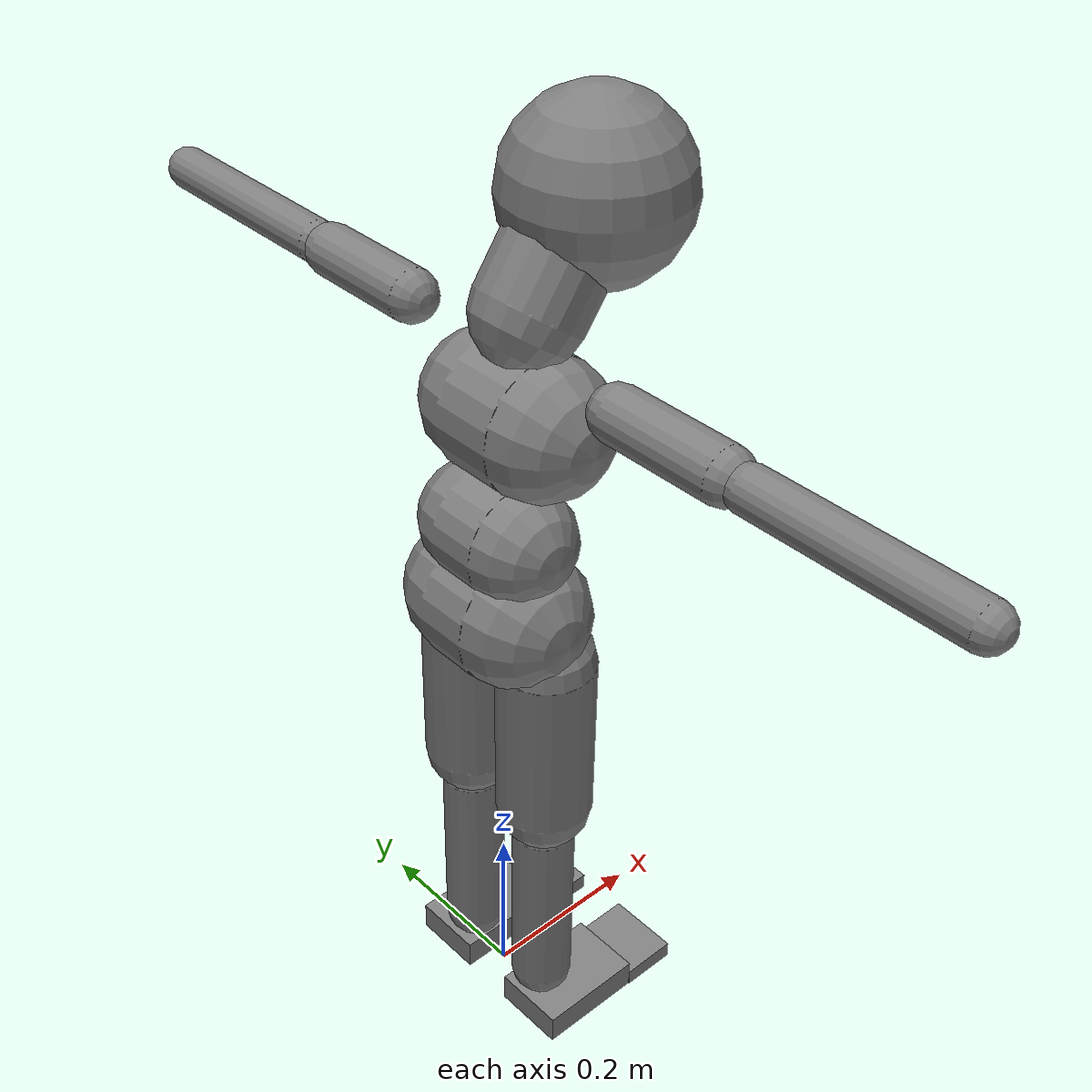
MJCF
<!-- GENERATED by training/tools/build_mjcf.py from SourceArt/Zombie/zombie.glb. Do not edit. -->
<mujoco model="zombie">
  <compiler angle="degree" autolimits="true" />
  <option timestep="0.005" gravity="0 0 -9.81" integrator="implicitfast" solver="Newton" iterations="20" cone="pyramidal" jacobian="auto">
    <flag multiccd="disable" />
  </option>
  <worldbody>
    <body name="pelvis" pos="0 0 0.559887">
      <inertial pos="-0.007612123 0 0.009433847" quat="0.7071068 -0.7071068 0 0" mass="2.457886" diaginertia="0.009705657 0.009705657 0.006605976" />
      <freejoint name="root" />
      <geom name="pelvis_geom0" type="capsule" size="0.07844793 0.03035992" contype="256" conaffinity="256" condim="3" friction="1 0.005 0.0001" pos="-0.007612123 0 0.009433847" quat="0.7071068 -0.7071068 0 0" />
      <body name="torso" pos="-0.001231 -2.6e-05 0.062415">
        <inertial pos="-0.005324366 2.6e-05 0.03596058" quat="0.7071068 -0.7071068 0 0" mass="3.590602" diaginertia="0.009810929 0.009810929 0.006378186" />
        <joint name="abdomen_flex" type="hinge" pos="0 0 0" axis="0 1 0" range="-30 60" armature="0.002099598" />
        <joint name="abdomen_lat" type="hinge" pos="0 0 0" axis="1 0 0" range="-35 35" armature="0.002099598" />
        <joint name="abdomen_twist" type="hinge" pos="0 0 0" axis="0 0 1" range="-45 45" armature="0.002099598" />
        <geom name="torso_geom0" type="capsule" size="0.06358528 0.02750999" contype="256" conaffinity="256" condim="3" friction="1 0.005 0.0001" pos="-0.005324366 2.6e-05 0.03596058" quat="0.7071068 -0.7071068 0 0" />
        <body name="chest" pos="-0.000412 0 0.109225">
          <inertial pos="0.02102744 2.6e-05 0.05248355" quat="0.7071068 -0.7071068 0 0" mass="3.510872" diaginertia="0.01368155 0.01368155 0.008567377" />
          <geom name="chest_geom0" type="capsule" size="0.07435712 0.03495606" contype="256" conaffinity="256" condim="3" friction="1 0.005 0.0001" pos="0.02102744 2.6e-05 0.05248355" quat="0.7071068 -0.7071068 0 0" />
          <body name="head" pos="0.033148 0 0.156037">
            <inertial pos="0.06573305 1.878749e-05 0.0784395" quat="0.6614595 0.2478298 0.2473417 0.6632298" mass="1.525869" diaginertia="0.008143213 0.008139096 0.004756541" />
            <geom name="head_geom0" type="capsule" size="0.05753786 0.03165845" contype="256" conaffinity="256" condim="3" friction="1 0.005 0.0001" pos="0.018568 0 0.0256415" quat="0.9512996 0 0.3082679 0" />
            <geom name="head_geom1" type="sphere" size="0.09675238" contype="256" conaffinity="256" condim="3" friction="1 0.005 0.0001" pos="0.08383968 2.6e-05 0.09870861" />
          </body>
          <body name="upper_arm_l" pos="0.009612 0.129445 0.124194">
            <inertial pos="-0.000137 0.078008 7.7e-05" quat="0.7074557 -0.7067566 -0.001241227 0" mass="0.5966008" diaginertia="0.001505767 0.001505767 0.0002328844" />
            <joint name="shoulder_elev_l" type="hinge" pos="0 0 0" axis="1 0 0" range="-95 80" armature="0.001049799" />
            <joint name="shoulder_flex_l" type="hinge" pos="0 0 0" axis="0 0 -1" range="-60 170" armature="0.001049799" />
            <joint name="shoulder_twist_l" type="hinge" pos="0 0 0" axis="0 1 0" range="-80 80" armature="0.001049799" />
            <geom name="upper_arm_l_geom0" type="capsule" size="0.028608 0.06370416" contype="256" conaffinity="256" condim="3" friction="1 0.005 0.0001" pos="-0.000137 0.078008 7.7e-05" quat="0.7074557 -0.7067566 -0.001241227 0" />
            <body name="forearm_l" pos="-0.000274 0.156016 0.000154">
              <inertial pos="9.064547e-05 0.1302764 3.230928e-05" quat="0.7071945 -0.7070189 0.0004919392 0" mass="0.492127" diaginertia="0.003034748 0.003034748 0.0001322193" />
              <joint name="elbow_l" type="hinge" pos="0 0 0" axis="0 0 -1" range="0 145" armature="0.001049799" />
              <geom name="forearm_l_geom0" type="capsule" size="0.0234555 0.1185487" contype="256" conaffinity="256" condim="3" friction="1 0.005 0.0001" pos="9.064547e-05 0.1302764 3.230928e-05" quat="0.7071945 -0.7070189 0.0004919392 0" />
            </body>
          </body>
          <body name="upper_arm_r" pos="0.009612 -0.129445 0.124194">
            <inertial pos="-0.000137 -0.078008 7.7e-05" quat="0.7074557 0.7067566 -0.001241227 0" mass="0.5966008" diaginertia="0.001505767 0.001505767 0.0002328844" />
            <joint name="shoulder_elev_r" type="hinge" pos="0 0 0" axis="-1 0 0" range="-95 80" armature="0.001049799" />
            <joint name="shoulder_flex_r" type="hinge" pos="0 0 0" axis="0 0 1" range="-60 170" armature="0.001049799" />
            <joint name="shoulder_twist_r" type="hinge" pos="0 0 0" axis="0 1 0" range="-80 80" armature="0.001049799" />
            <geom name="upper_arm_r_geom0" type="capsule" size="0.028608 0.06370416" contype="256" conaffinity="256" condim="3" friction="1 0.005 0.0001" pos="-0.000137 -0.077956 7.7e-05" quat="0.7074557 0.7067566 -0.001241227 0" />
            <body name="forearm_r" pos="-0.000271 -0.156311 0.000154">
              <inertial pos="9.064547e-05 -0.1302764 3.230928e-05" quat="0.7071945 0.7070189 0.0004919392 0" mass="0.492127" diaginertia="0.003034748 0.003034748 0.0001322193" />
              <joint name="elbow_r" type="hinge" pos="0 0 0" axis="0 0 1" range="0 145" armature="0.001049799" />
              <geom name="forearm_r_geom0" type="capsule" size="0.0234555 0.1185487" contype="256" conaffinity="256" condim="3" friction="1 0.005 0.0001" pos="8.764547e-05 -0.1299294 3.230928e-05" quat="0.7071945 0.7070189 0.0004919392 0" />
            </body>
          </body>
        </body>
      </body>
      <body name="thigh_l" pos="0.006255 0.0602 -0.015578">
        <inertial pos="0 0 -0.1278905" quat="0 1 0 0" mass="3.114971" diaginertia="0.02209944 0.02209944 0.004297472" />
        <joint name="hip_flex_l" type="hinge" pos="0 0 0" axis="0 -1 0" range="-30 120" armature="0.002099598" />
        <joint name="hip_abd_l" type="hinge" pos="0 0 0" axis="1 0 0" range="-30 45" armature="0.002099598" />
        <joint name="hip_rot_l" type="hinge" pos="0 0 0" axis="0 0 1" range="-40 40" armature="0.002099598" />
        <geom name="thigh_l_geom0" type="capsule" size="0.05396597 0.1009075" contype="256" conaffinity="256" condim="3" friction="1 0.005 0.0001" pos="0 0 -0.1278905" quat="0 1 0 0" />
        <body name="shin_l" pos="0 0 -0.255781">
          <inertial pos="0 0 -0.1340565" quat="0 1 0 0" mass="0.9512622" diaginertia="0.006572025 0.006572025 0.0005829297" />
          <joint name="knee_l" type="hinge" pos="0 0 0" axis="0 1 0" range="0 150" armature="0.002099598" />
          <geom name="shin_l_geom0" type="capsule" size="0.03561781 0.1162476" contype="256" conaffinity="256" condim="3" friction="1 0.005 0.0001" pos="0 0 -0.1340565" quat="0 1 0 0" />
          <body name="foot_l" pos="0 0 -0.268113">
            <inertial pos="0.02989977 0.01554355 -0.02697956" quat="1 0 0 0" mass="0.2336916" diaginertia="0.0001722914 0.000345643 0.000464408" />
            <joint name="ankle_dorsi_l" type="hinge" pos="0 0 0" axis="0 -1 0" range="-50 25" armature="0.001049799" />
            <joint name="ankle_inv_l" type="hinge" pos="0 0 0" axis="-1 0 0" range="-20 30" armature="0.001049799" />
            <geom name="foot_l_geom0" type="box" size="0.06398123 0.04322278 0.01853566" contype="256" conaffinity="256" condim="3" friction="1 0.005 0.0001" pos="0.02989977 0.01554355 -0.02697956" />
            <body name="toe_l" pos="0.093881 0.002417 -0.028506">
              <inertial pos="0.03375064 0.01336441 -0.006196754" quat="1 0 0 0" mass="0.06873282" diaginertia="4.657589e-05 2.877649e-05 6.999537e-05" />
              <joint name="toe_l" type="hinge" pos="0 0 0" axis="0 -1 0" range="-30 60" stiffness="3.398204" damping="0.1335558" armature="0.0005248994" />
              <geom name="toe_l_geom0" type="box" size="0.03375064 0.04377215 0.01081247" contype="256" conaffinity="256" condim="3" friction="1 0.005 0.0001" pos="0.03375064 0.01336441 -0.006196754" />
            </body>
          </body>
        </body>
      </body>
      <body name="thigh_r" pos="0.006255 -0.060187 -0.015628">
        <inertial pos="0 0 -0.1278905" quat="0 -1 0 0" mass="3.114971" diaginertia="0.02209944 0.02209944 0.004297472" />
        <joint name="hip_flex_r" type="hinge" pos="0 0 0" axis="0 -1 0" range="-30 120" armature="0.002099598" />
        <joint name="hip_abd_r" type="hinge" pos="0 0 0" axis="-1 0 0" range="-30 45" armature="0.002099598" />
        <joint name="hip_rot_r" type="hinge" pos="0 0 0" axis="0 0 -1" range="-40 40" armature="0.002099598" />
        <geom name="thigh_r_geom0" type="capsule" size="0.05396597 0.1009075" contype="256" conaffinity="256" condim="3" friction="1 0.005 0.0001" pos="0 -1.3e-05 -0.1278405" quat="0 1 0 0" />
        <body name="shin_r" pos="0 0 -0.252279">
          <inertial pos="0 0 -0.1340565" quat="0 -1 0 0" mass="0.9512622" diaginertia="0.006572025 0.006572025 0.0005829297" />
          <joint name="knee_r" type="hinge" pos="0 0 0" axis="0 1 0" range="0 150" armature="0.002099598" />
          <geom name="shin_r_geom0" type="capsule" size="0.03561781 0.1162476" contype="256" conaffinity="256" condim="3" friction="1 0.005 0.0001" pos="0 -1.3e-05 -0.1375085" quat="0 1 0 0" />
          <body name="foot_r" pos="0 0 -0.269013">
            <inertial pos="0.02989977 -0.01554355 -0.02697956" quat="1 0 0 0" mass="0.2336916" diaginertia="0.0001722914 0.000345643 0.000464408" />
            <joint name="ankle_dorsi_r" type="hinge" pos="0 0 0" axis="0 -1 0" range="-50 25" armature="0.001049799" />
            <joint name="ankle_inv_r" type="hinge" pos="0 0 0" axis="1 0 0" range="-20 30" armature="0.001049799" />
            <geom name="foot_r_geom0" type="box" size="0.06398123 0.04322278 0.01853566" contype="256" conaffinity="256" condim="3" friction="1 0.005 0.0001" pos="0.02989977 -0.01555655 -0.02953156" />
            <body name="toe_r" pos="0.089318 -0.003451 -0.028805">
              <inertial pos="0.03375064 -0.01336441 -0.006196754" quat="1 0 0 0" mass="0.06873282" diaginertia="4.657589e-05 2.877649e-05 6.999537e-05" />
              <joint name="toe_r" type="hinge" pos="0 0 0" axis="0 -1 0" range="-30 60" stiffness="3.398204" damping="0.1335558" armature="0.0005248994" />
              <geom name="toe_r_geom0" type="box" size="0.03375064 0.04377215 0.01081247" contype="256" conaffinity="256" condim="3" friction="1 0.005 0.0001" pos="0.03831364 -0.01234341 -0.008449754" />
            </body>
          </body>
        </body>
      </body>
    </body>
  </worldbody>
  <contact />
  <actuator>
    <position name="abdomen_flex" joint="abdomen_flex" kp="35.68114" kv="2.804672" forcelimited="true" forcerange="-23.78743 23.78743" />
    <position name="abdomen_lat" joint="abdomen_lat" kp="35.68114" kv="2.804672" forcelimited="true" forcerange="-23.78743 23.78743" />
    <position name="abdomen_twist" joint="abdomen_twist" kp="35.68114" kv="2.804672" forcelimited="true" forcerange="-23.78743 23.78743" />
    <position name="shoulder_elev_l" joint="shoulder_elev_l" kp="7.136228" kv="0.5609344" forcelimited="true" forcerange="-9.51497 9.51497" />
    <position name="shoulder_flex_l" joint="shoulder_flex_l" kp="7.136228" kv="0.5609344" forcelimited="true" forcerange="-9.51497 9.51497" />
    <position name="shoulder_twist_l" joint="shoulder_twist_l" kp="7.136228" kv="0.5609344" forcelimited="true" forcerange="-9.51497 9.51497" />
    <position name="elbow_l" joint="elbow_l" kp="5.946856" kv="0.4674453" forcelimited="true" forcerange="-8.325599 8.325599" />
    <position name="shoulder_elev_r" joint="shoulder_elev_r" kp="7.136228" kv="0.5609344" forcelimited="true" forcerange="-9.51497 9.51497" />
    <position name="shoulder_flex_r" joint="shoulder_flex_r" kp="7.136228" kv="0.5609344" forcelimited="true" forcerange="-9.51497 9.51497" />
    <position name="shoulder_twist_r" joint="shoulder_twist_r" kp="7.136228" kv="0.5609344" forcelimited="true" forcerange="-9.51497 9.51497" />
    <position name="elbow_r" joint="elbow_r" kp="5.946856" kv="0.4674453" forcelimited="true" forcerange="-8.325599 8.325599" />
    <position name="hip_flex_l" joint="hip_flex_l" kp="35.68114" kv="2.804672" forcelimited="true" forcerange="-33.3024 33.3024" />
    <position name="hip_abd_l" joint="hip_abd_l" kp="35.68114" kv="2.804672" forcelimited="true" forcerange="-33.3024 33.3024" />
    <position name="hip_rot_l" joint="hip_rot_l" kp="35.68114" kv="2.804672" forcelimited="true" forcerange="-33.3024 33.3024" />
    <position name="knee_l" joint="knee_l" kp="35.68114" kv="2.804672" forcelimited="true" forcerange="-33.3024 33.3024" />
    <position name="ankle_dorsi_l" joint="ankle_dorsi_l" kp="23.78743" kv="1.869781" forcelimited="true" forcerange="-26.16617 26.16617" />
    <position name="ankle_inv_l" joint="ankle_inv_l" kp="23.78743" kv="1.869781" forcelimited="true" forcerange="-26.16617 26.16617" />
    <position name="hip_flex_r" joint="hip_flex_r" kp="35.68114" kv="2.804672" forcelimited="true" forcerange="-33.3024 33.3024" />
    <position name="hip_abd_r" joint="hip_abd_r" kp="35.68114" kv="2.804672" forcelimited="true" forcerange="-33.3024 33.3024" />
    <position name="hip_rot_r" joint="hip_rot_r" kp="35.68114" kv="2.804672" forcelimited="true" forcerange="-33.3024 33.3024" />
    <position name="knee_r" joint="knee_r" kp="35.68114" kv="2.804672" forcelimited="true" forcerange="-33.3024 33.3024" />
    <position name="ankle_dorsi_r" joint="ankle_dorsi_r" kp="23.78743" kv="1.869781" forcelimited="true" forcerange="-26.16617 26.16617" />
    <position name="ankle_inv_r" joint="ankle_inv_r" kp="23.78743" kv="1.869781" forcelimited="true" forcerange="-26.16617 26.16617" />
  </actuator>
</mujoco>
